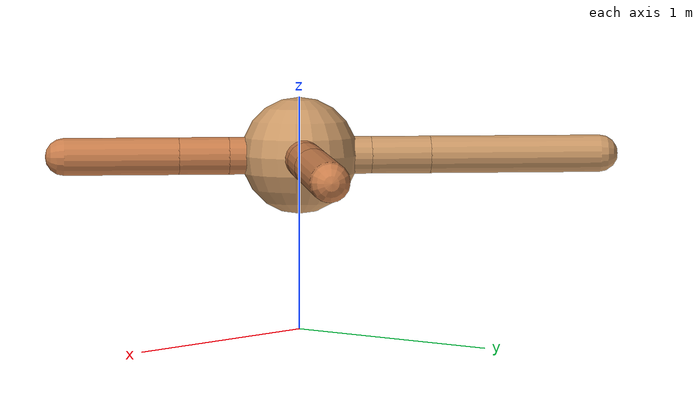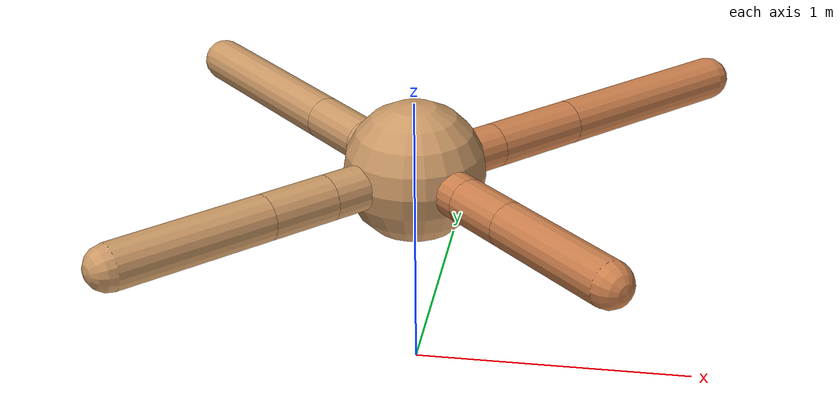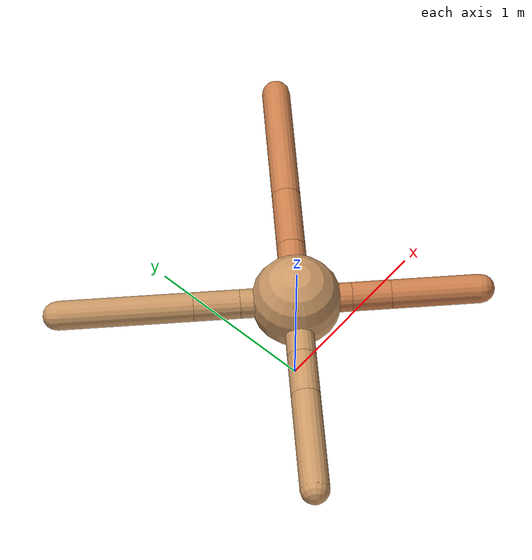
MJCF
<mujoco model="ant">
  <compiler angle="degree" coordinate="local" inertiafromgeom="true" />
  <option integrator="RK4" timestep="0.01" />
  <custom>
    <numeric data="0.0 0.0 0.55 1.0 0.0 0.0 0.0 0.0 1.0 0.0 -1.0 0.0 -1.0 0.0 1.0" name="init_qpos" />
  </custom>
  <default>
    <joint armature="1" damping="1" limited="true" />
    <geom conaffinity="0" condim="3" density="5.0" friction="1.5 0.1 0.1" margin="0.01" rgba="0.8 0.6 0.4 1" />
  </default>
  <worldbody>
    <body name="torso" pos="0 0 0.75">
      <geom name="torso_geom" pos="0 0 0" size="0.25" type="sphere" />

      <body name="front_left_leg" pos="0 0 0">
        <geom fromto="0.0 0.0 0.0 0.24725446353860284 0.24725446353860284 0.0" name="aux_1_geom" size="0.08" type="capsule" rgba=".8 .5 .3 1" />
        <body name="aux_1" pos="0.24725446353860284 0.24725446353860284 0.0">
          <joint axis="0 0 1" name="hip_1" pos="0.0 0.0 0.0" range="-40 40" type="hinge" />
          <geom fromto="0.0 0.0 0.0 0.24342650882705774 0.24342650882705774 0.0" name="left_leg_geom" size="0.08" type="capsule" rgba=".8 .5 .3 1" />
          <body pos="0.24342650882705774 0.24342650882705774 0.0" name="front_left_foot">
            <joint axis="-1 1 0" name="ankle_1" pos="0.0 0.0 0.0" range="30 100" type="hinge" />
            <geom fromto="0.0 0.0 0.0 0.5091019879435531 0.5091019879435531 0.0" name="left_ankle_geom" size="0.08" type="capsule" rgba=".8 .5 .3 1" />
          </body>
        </body>
      </body>
      <body name="front_right_leg" pos="0 0 0">
        <geom fromto="0.0 0.0 0.0 -0.21700703462859786 0.21700703462859786 0.0" name="aux_2_geom" size="0.08" type="capsule" />
        <body name="aux_2" pos="-0.21700703462859786 0.21700703462859786 0.0">
          <joint axis="0 0 1" name="hip_2" pos="0.0 0.0 0.0" range="-40 40" type="hinge" />
          <geom fromto="0.0 0.0 0.0 -0.18037646572015134 0.18037646572015134 0.0" name="right_leg_geom" size="0.08" type="capsule" />
          <body pos="-0.18037646572015134 0.18037646572015134 0.0" name="front_right_foot">
            <joint axis="1 1 0" name="ankle_2" pos="0.0 0.0 0.0" range="-100 -30" type="hinge" />
            <geom fromto="0.0 0.0 0.0 -0.5214416548924885 0.5214416548924885 0.0" name="right_ankle_geom" size="0.08" type="capsule" />
          </body>
        </body>
      </body>
      <body name="left_back_leg" pos="0 0 0">
        <geom fromto="0.0 0.0 0.0 -0.2547428474787663 -0.2547428474787663 0.0" name="aux_3_geom" size="0.08" type="capsule" />
        <body name="aux_3" pos="-0.2547428474787663 -0.2547428474787663 0.0">
          <joint axis="0 0 1" name="hip_3" pos="0.0 0.0 0.0" range="-40 40" type="hinge" />
          <geom fromto="0.0 0.0 0.0 -0.17141947051313677 -0.17141947051313677 0.0" name="back_leg_geom" size="0.08" type="capsule" />
          <body pos="-0.17141947051313677 -0.17141947051313677 0.0" name="left_back_foot">
            <joint axis="-1 1 0" name="ankle_3" pos="0.0 0.0 0.0" range="-100 -30" type="hinge" />
            <geom fromto="0.0 0.0 0.0 -0.40043535262142643 -0.40043535262142643 0.0" name="third_ankle_geom" size="0.08" type="capsule" />
          </body>
        </body>
      </body>
      <body name="right_back_leg" pos="0 0 0">
        <geom fromto="0.0 0.0 0.0 0.2140790360454557 -0.2140790360454557 0.0" name="aux_4_geom" size="0.08" type="capsule" rgba=".8 .5 .3 1" />
        <body name="aux_4" pos="0.2140790360454557 -0.2140790360454557 0.0">
          <joint axis="0 0 1" name="hip_4" pos="0.0 0.0 0.0" range="-40 40" type="hinge" />
          <geom fromto="0.0 0.0 0.0 0.15146313544459358 -0.15146313544459358 0.0" name="rightback_leg_geom" size="0.08" type="capsule" rgba=".8 .5 .3 1" />
          <body pos="0.15146313544459358 -0.15146313544459358 0.0" name="right_back_foot">
            <joint axis="1 1 0" name="ankle_4" pos="0.0 0.0 0.0" range="30 100" type="hinge" />
            <geom fromto="0.0 0.0 0.0 0.34636576651038326 -0.34636576651038326 0.0" name="fourth_ankle_geom" size="0.08" type="capsule" rgba=".8 .5 .3 1" />
          </body>
        </body>
      </body>
    </body>
  </worldbody>
  <actuator>
    <motor ctrllimited="true" ctrlrange="-1.0 1.0" joint="hip_4" gear="150" />
    <motor ctrllimited="true" ctrlrange="-1.0 1.0" joint="ankle_4" gear="150" />
    <motor ctrllimited="true" ctrlrange="-1.0 1.0" joint="hip_1" gear="150" />
    <motor ctrllimited="true" ctrlrange="-1.0 1.0" joint="ankle_1" gear="150" />
    <motor ctrllimited="true" ctrlrange="-1.0 1.0" joint="hip_2" gear="150" />
    <motor ctrllimited="true" ctrlrange="-1.0 1.0" joint="ankle_2" gear="150" />
    <motor ctrllimited="true" ctrlrange="-1.0 1.0" joint="hip_3" gear="150" />
    <motor ctrllimited="true" ctrlrange="-1.0 1.0" joint="ankle_3" gear="150" />
  </actuator>
</mujoco>
